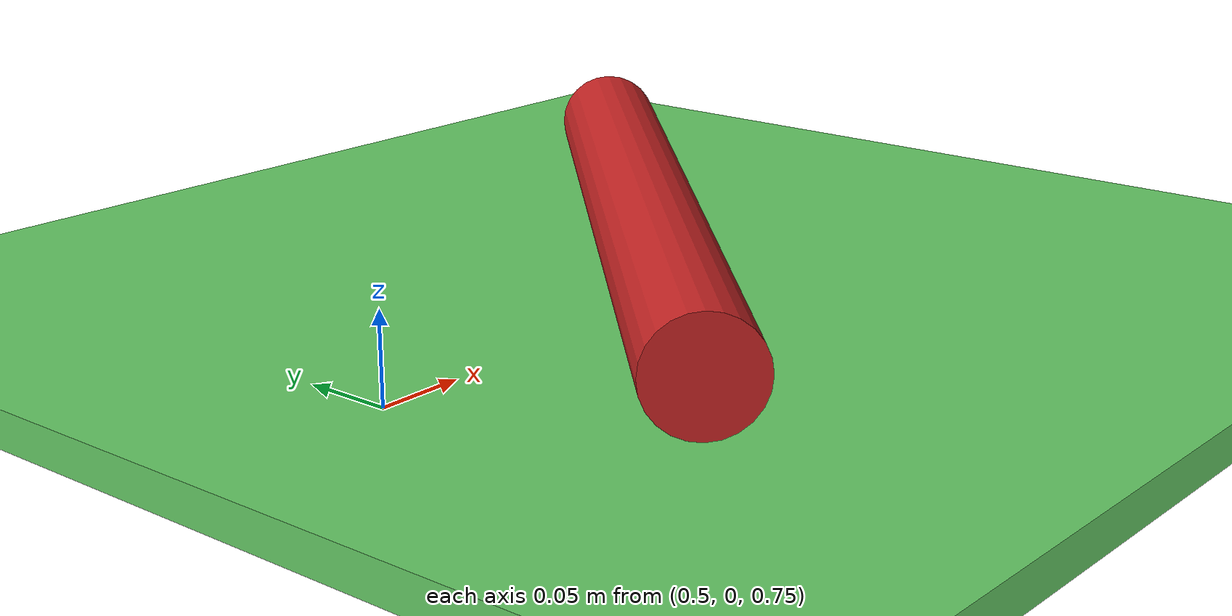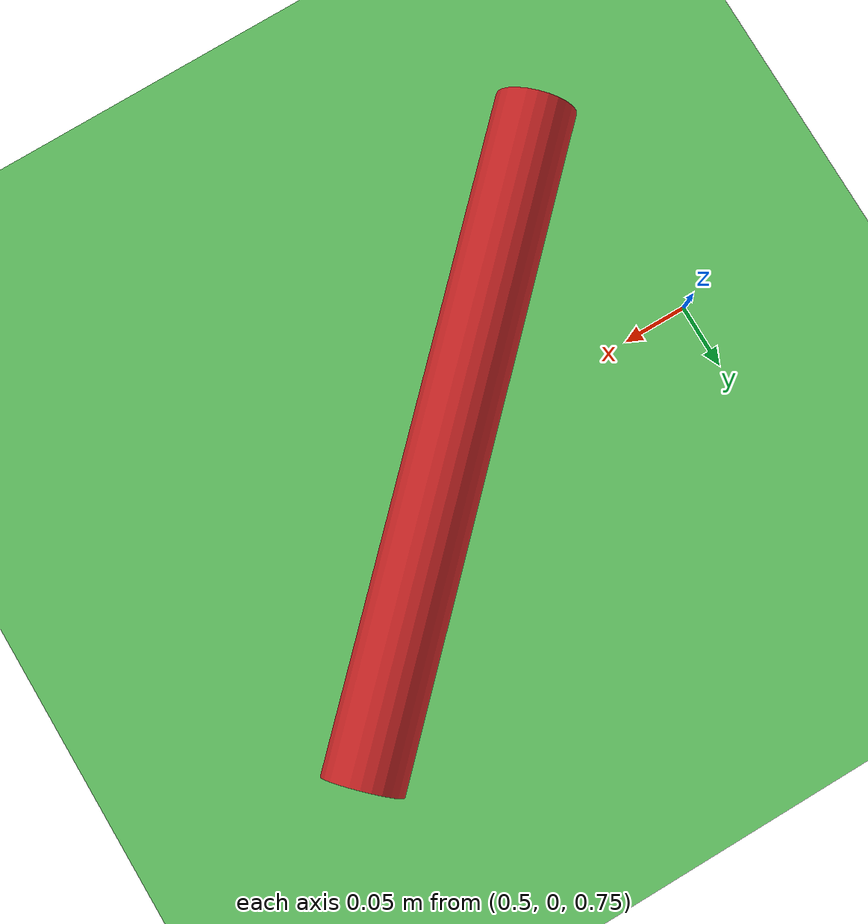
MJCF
<mujoco>
	<compiler angle="radian" coordinate="local" />
	<option gravity="0 0 0" integrator="Euler" iterations="500" solver="CG" timestep="0.001" tolerance="1e-10">
		<flag warmstart="enable" />
	</option>
	<asset>
		<texture builtin="gradient" height="32" rgb1="0.44 0.85 0.56" rgb2="0.46 0.87 0.58" type="skybox" width="32" />
	</asset>

	<include file="cube.xml" />
	<include file="ground.xml" />

	<include file="table.xml" />

	<worldbody>
		<light ambient="0.2 0.2 0.2" castshadow="true" diffuse="0.8 0.8 0.8" dir="0 0 -1" directional="true" name="light0" pos="0 0 4" specular="0.3 0.3 0.3" />
		<camera fovy="90" name="top_camera_rgb" pos="0.8 0 1.666" quat="1.0 0 0 0" />
	</worldbody>
</mujoco>

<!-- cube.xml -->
<mujoco model="cube">
    <option  gravity="0 0 -9.8" >
        <flag  warmstart="enable"></flag>
    </option>
    <asset>
        <texture name="texture_block" file="./textures/block_red.png" gridsize="3 4" gridlayout=".U..LFRB.D.."></texture>
        <material name="block_mat" texture="texture_block" specular="0" shininess="0.5" reflectance="0"></material>
    </asset>

  <!--quat=""-->
    <worldbody>
        <body name="object0" pos="0.70 0.0 0.8" quat="0.65328148 -0.27059805  0.65328148  0.27059805">
            <joint name="object0:joint" type="free" damping="0.1" limited="false"></joint>
            <geom size="0.03 0.25" type="cylinder" condim="4" solimp="0.95 0.95 0.01" name="object0" material="block_mat" mass="0.01" friction="0.95 0.3 0.8" ></geom>
        </body>
    </worldbody>
</mujoco>

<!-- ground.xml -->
<mujoco>
	<asset>
		<texture name="ground_texture" type="2d" file="./textures/hexagon_1.png"></texture>
		<texture name="ground_checker" type="2d" builtin="checker" rgb1="0.1 0.1 0.40" rgb2="0.15 0.15 0.60" height="40" width="40"></texture>
		<material name="floor_mat" texture="ground_checker" specular="0.0" shininess="0.1" reflectance="0.50" texrepeat="15 10"></material>
		<texture name="texplane" type="2d" builtin="checker" rgb1=".2 .3 .4" rgb2=".1 0.15 0.2" width="100" height="100"/>

        <material name='MatPlane' reflectance='0.5' texture="texplane" texrepeat="4 4" texuniform="true"/>
	</asset>

	<worldbody>
		<geom name='floor' pos='0 0 0' size='2 2 0.0125' type='plane' solimp="0.0 0.55 0.001" solref="0.002 1" material="MatPlane" condim='3'/>
	</worldbody>
</mujoco>

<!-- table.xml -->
<mujoco>
	<asset>
		<material name="table_mat" specular="0" shininess="0" reflectance="0.5" rgba="0.4 0.8 0.4 1"></material>
	</asset>

	<worldbody>
		<body pos="0.80 0.0 0.76" name="table0">
			<geom size="0.896 0.896 0.01" solimp="0.0 0.55 0.001" solref="0.002 1" condim="3" margin="0" type="box" mass="2000" material="table_mat" name="table0"></geom>
		</body>
	</worldbody>
</mujoco>
